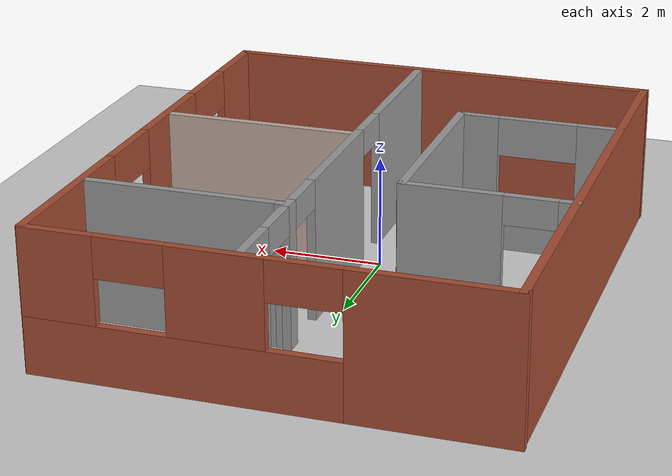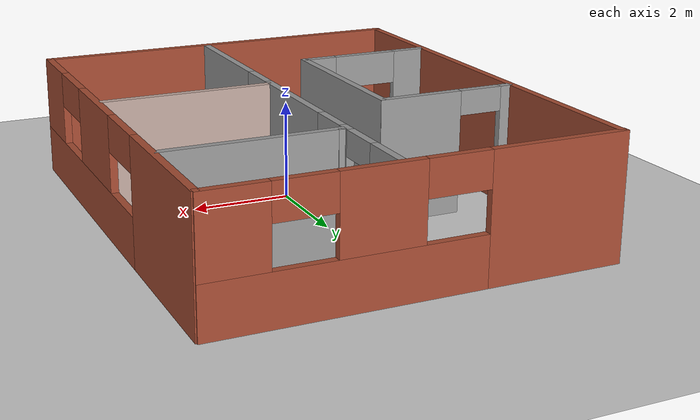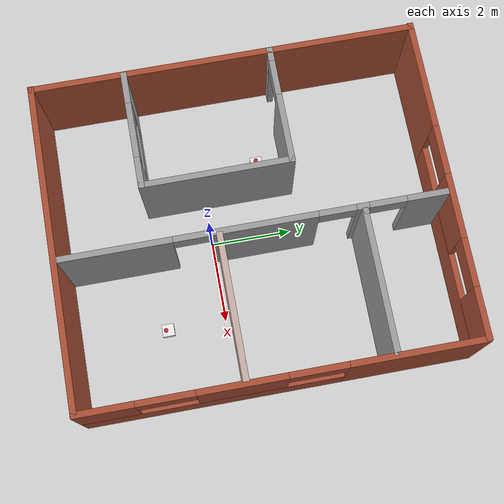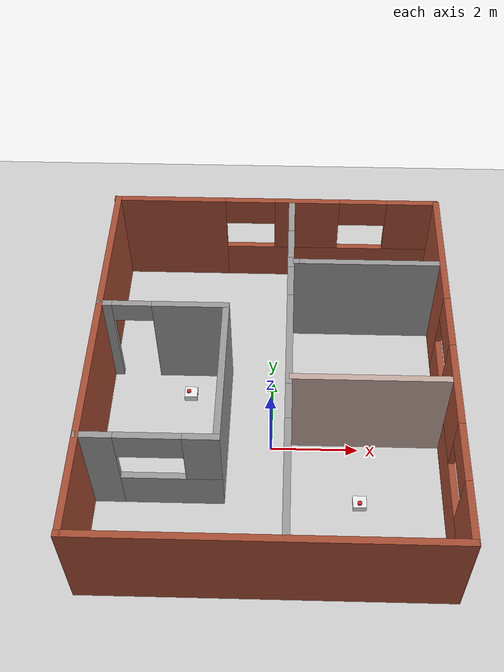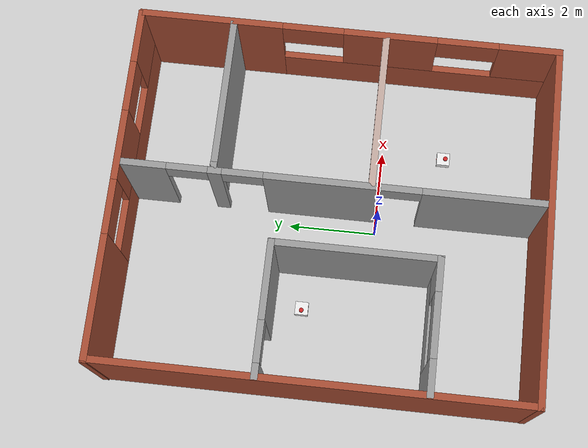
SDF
<sdf version="1.6">
 <world name="my_world">
  <include><uri>model://ground_plane</uri></include>
  <include><uri>model://sun</uri></include>
  <include><uri>model://my_building</uri></include>
  <include><uri>model://my_bot</uri><name>my_bot_1</name><pose>-2 1.5 0 0 0 0</pose></include>
  <include><uri>model://my_bot</uri><name>my_bot_2</name><pose>2 -1.5 0 0 0 1.5707</pose></include>
  <plugin name="welcome" filename="libwelcome.so"/>
 </world>
</sdf>

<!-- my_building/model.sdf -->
<sdf version='1.7'>
  <model name='my_world_example'>
    <pose>-0.006622 1.02346 0 0 -0 0</pose>
    <link name='Wall_14'>
      <collision name='Wall_14_Collision'>
        <geometry>
          <box>
            <size>0.15 0.15 2.5</size>
          </box>
        </geometry>
        <pose>0 0 1.25 0 -0 0</pose>
      </collision>
      <visual name='Wall_14_Visual'>
        <pose>0 0 1.25 0 -0 0</pose>
        <geometry>
          <box>
            <size>0.15 0.15 2.5</size>
          </box>
        </geometry>
        <material>
          <script>
            <uri>file://media/materials/scripts/gazebo.material</uri>
            <name>Gazebo/Grey</name>
          </script>
          <ambient>1 1 1 1</ambient>
        </material>
        <meta>
          <layer>0</layer>
        </meta>
      </visual>
      <pose>0.509968 2.60791 0 0 -0 0</pose>
    </link>
    <link name='Wall_3'>
      <pose>3.93862 -0.015464 0 0 -0 -1.5708</pose>
      <visual name='Wall_3_Visual_0'>
        <pose>-3.13619 0 1.25 0 -0 0</pose>
        <geometry>
          <box>
            <size>3.22762 0.15 2.5</size>
          </box>
        </geometry>
        <material>
          <script>
            <uri>file://media/materials/scripts/gazebo.material</uri>
            <name>Gazebo/Bricks</name>
          </script>
          <ambient>1 1 1 1</ambient>
        </material>
        <meta>
          <layer>0</layer>
        </meta>
      </visual>
      <collision name='Wall_3_Collision_0'>
        <geometry>
          <box>
            <size>3.22762 0.15 2.5</size>
          </box>
        </geometry>
        <pose>-3.13619 0 1.25 0 -0 0</pose>
      </collision>
      <visual name='Wall_3_Visual_1'>
        <pose>1.61381 0 0.5 0 -0 0</pose>
        <geometry>
          <box>
            <size>6.27238 0.15 1</size>
          </box>
        </geometry>
        <material>
          <script>
            <uri>file://media/materials/scripts/gazebo.material</uri>
            <name>Gazebo/Bricks</name>
          </script>
          <ambient>1 1 1 1</ambient>
        </material>
        <meta>
          <layer>0</layer>
        </meta>
      </visual>
      <collision name='Wall_3_Collision_1'>
        <geometry>
          <box>
            <size>6.27238 0.15 1</size>
          </box>
        </geometry>
        <pose>1.61381 0 0.5 0 -0 0</pose>
      </collision>
      <visual name='Wall_3_Visual_2'>
        <pose>0.90617 0 1.75 0 -0 0</pose>
        <geometry>
          <box>
            <size>2.10109 0.15 1.5</size>
          </box>
        </geometry>
        <material>
          <script>
            <uri>file://media/materials/scripts/gazebo.material</uri>
            <name>Gazebo/Bricks</name>
          </script>
          <ambient>1 1 1 1</ambient>
        </material>
        <meta>
          <layer>0</layer>
        </meta>
      </visual>
      <collision name='Wall_3_Collision_2'>
        <geometry>
          <box>
            <size>2.10109 0.15 1.5</size>
          </box>
        </geometry>
        <pose>0.90617 0 1.75 0 -0 0</pose>
      </collision>
      <visual name='Wall_3_Visual_3'>
        <pose>4.03836 0 1.75 0 -0 0</pose>
        <geometry>
          <box>
            <size>1.42328 0.15 1.5</size>
          </box>
        </geometry>
        <material>
          <script>
            <uri>file://media/materials/scripts/gazebo.material</uri>
            <name>Gazebo/Bricks</name>
          </script>
          <ambient>1 1 1 1</ambient>
        </material>
        <meta>
          <layer>0</layer>
        </meta>
      </visual>
      <collision name='Wall_3_Collision_3'>
        <geometry>
          <box>
            <size>1.42328 0.15 1.5</size>
          </box>
        </geometry>
        <pose>4.03836 0 1.75 0 -0 0</pose>
      </collision>
      <visual name='Wall_3_Visual_4'>
        <pose>-0.833377 0 2.15 0 -0 0</pose>
        <geometry>
          <box>
            <size>1.378 0.15 0.7</size>
          </box>
        </geometry>
        <material>
          <script>
            <uri>file://media/materials/scripts/gazebo.material</uri>
            <name>Gazebo/Bricks</name>
          </script>
          <ambient>1 1 1 1</ambient>
        </material>
        <meta>
          <layer>0</layer>
        </meta>
      </visual>
      <collision name='Wall_3_Collision_4'>
        <geometry>
          <box>
            <size>1.378 0.15 0.7</size>
          </box>
        </geometry>
        <pose>-0.833377 0 2.15 0 -0 0</pose>
      </collision>
      <visual name='Wall_3_Visual_5'>
        <pose>2.64172 0 2.15 0 -0 0</pose>
        <geometry>
          <box>
            <size>1.37 0.15 0.7</size>
          </box>
        </geometry>
        <material>
          <script>
            <uri>file://media/materials/scripts/gazebo.material</uri>
            <name>Gazebo/Bricks</name>
          </script>
          <ambient>1 1 1 1</ambient>
        </material>
        <meta>
          <layer>0</layer>
        </meta>
      </visual>
      <collision name='Wall_3_Collision_5'>
        <geometry>
          <box>
            <size>1.37 0.15 0.7</size>
          </box>
        </geometry>
        <pose>2.64172 0 2.15 0 -0 0</pose>
      </collision>
    </link>
    <link name='Wall_33'>
      <collision name='Wall_33_Collision'>
        <geometry>
          <box>
            <size>9.5 0.15 2.5</size>
          </box>
        </geometry>
        <pose>0 0 1.25 0 -0 0</pose>
      </collision>
      <visual name='Wall_33_Visual'>
        <pose>0 0 1.25 0 -0 0</pose>
        <geometry>
          <box>
            <size>9.5 0.15 2.5</size>
          </box>
        </geometry>
        <material>
          <script>
            <uri>file://media/materials/scripts/gazebo.material</uri>
            <name>Gazebo/Bricks</name>
          </script>
          <ambient>1 1 1 1</ambient>
        </material>
        <meta>
          <layer>0</layer>
        </meta>
      </visual>
      <pose>-3.92017 0.013616 0 0 -0 -1.5708</pose>
    </link>
    <link name='Wall_35'>
      <pose>-2.48639 1.16661 0 0 -0 0</pose>
      <visual name='Wall_35_Visual_0'>
        <pose>-1.32433 0 1.25 0 -0 0</pose>
        <geometry>
          <box>
            <size>0.35134 0.15 2.5</size>
          </box>
        </geometry>
        <material>
          <script>
            <uri>file://media/materials/scripts/gazebo.material</uri>
            <name>Gazebo/Grey</name>
          </script>
          <ambient>1 1 1 1</ambient>
        </material>
        <meta>
          <layer>0</layer>
        </meta>
      </visual>
      <collision name='Wall_35_Collision_0'>
        <geometry>
          <box>
            <size>0.35134 0.15 2.5</size>
          </box>
        </geometry>
        <pose>-1.32433 0 1.25 0 -0 0</pose>
      </collision>
      <visual name='Wall_35_Visual_1'>
        <pose>0.62567 0 1.25 0 -0 0</pose>
        <geometry>
          <box>
            <size>1.74866 0.15 2.5</size>
          </box>
        </geometry>
        <material>
          <script>
            <uri>file://media/materials/scripts/gazebo.material</uri>
            <name>Gazebo/Grey</name>
          </script>
          <ambient>1 1 1 1</ambient>
        </material>
        <meta>
          <layer>0</layer>
        </meta>
      </visual>
      <collision name='Wall_35_Collision_1'>
        <geometry>
          <box>
            <size>1.74866 0.15 2.5</size>
          </box>
        </geometry>
        <pose>0.62567 0 1.25 0 -0 0</pose>
      </collision>
      <visual name='Wall_35_Visual_2'>
        <pose>-0.69866 0 2.25 0 -0 0</pose>
        <geometry>
          <box>
            <size>0.9 0.15 0.5</size>
          </box>
        </geometry>
        <material>
          <script>
            <uri>file://media/materials/scripts/gazebo.material</uri>
            <name>Gazebo/Grey</name>
          </script>
          <ambient>1 1 1 1</ambient>
        </material>
        <meta>
          <layer>0</layer>
        </meta>
      </visual>
      <collision name='Wall_35_Collision_2'>
        <geometry>
          <box>
            <size>0.9 0.15 0.5</size>
          </box>
        </geometry>
        <pose>-0.69866 0 2.25 0 -0 0</pose>
      </collision>
    </link>
    <link name='Wall_38'>
      <pose>-0.013622 4.69452 0 0 -0 0</pose>
      <visual name='Wall_38_Visual_0'>
        <pose>-2.6211 0 1.25 0 -0 0</pose>
        <geometry>
          <box>
            <size>2.75779 0.15 2.5</size>
          </box>
        </geometry>
        <material>
          <script>
            <uri>file://media/materials/scripts/gazebo.material</uri>
            <name>Gazebo/Bricks</name>
          </script>
          <ambient>1 1 1 1</ambient>
        </material>
        <meta>
          <layer>0</layer>
        </meta>
      </visual>
      <collision name='Wall_38_Collision_0'>
        <geometry>
          <box>
            <size>2.75779 0.15 2.5</size>
          </box>
        </geometry>
        <pose>-2.6211 0 1.25 0 -0 0</pose>
      </collision>
      <visual name='Wall_38_Visual_1'>
        <pose>1.3789 0 0.5 0 -0 0</pose>
        <geometry>
          <box>
            <size>5.24221 0.15 1</size>
          </box>
        </geometry>
        <material>
          <script>
            <uri>file://media/materials/scripts/gazebo.material</uri>
            <name>Gazebo/Bricks</name>
          </script>
          <ambient>1 1 1 1</ambient>
        </material>
        <meta>
          <layer>0</layer>
        </meta>
      </visual>
      <collision name='Wall_38_Collision_1'>
        <geometry>
          <box>
            <size>5.24221 0.15 1</size>
          </box>
        </geometry>
        <pose>1.3789 0 0.5 0 -0 0</pose>
      </collision>
      <visual name='Wall_38_Visual_2'>
        <pose>0.777661 0 1.75 0 -0 0</pose>
        <geometry>
          <box>
            <size>1.59774 0.15 1.5</size>
          </box>
        </geometry>
        <material>
          <script>
            <uri>file://media/materials/scripts/gazebo.material</uri>
            <name>Gazebo/Bricks</name>
          </script>
          <ambient>1 1 1 1</ambient>
        </material>
        <meta>
          <layer>0</layer>
        </meta>
      </visual>
      <collision name='Wall_38_Collision_2'>
        <geometry>
          <box>
            <size>1.59774 0.15 1.5</size>
          </box>
        </geometry>
        <pose>0.777661 0 1.75 0 -0 0</pose>
      </collision>
      <visual name='Wall_38_Visual_3'>
        <pose>3.36977 0 1.75 0 -0 0</pose>
        <geometry>
          <box>
            <size>1.26047 0.15 1.5</size>
          </box>
        </geometry>
        <material>
          <script>
            <uri>file://media/materials/scripts/gazebo.material</uri>
            <name>Gazebo/Bricks</name>
          </script>
          <ambient>1 1 1 1</ambient>
        </material>
        <meta>
          <layer>0</layer>
        </meta>
      </visual>
      <collision name='Wall_38_Collision_3'>
        <geometry>
          <box>
            <size>1.26047 0.15 1.5</size>
          </box>
        </geometry>
        <pose>3.36977 0 1.75 0 -0 0</pose>
      </collision>
      <visual name='Wall_38_Visual_4'>
        <pose>-0.631709 0 2.15 0 -0 0</pose>
        <geometry>
          <box>
            <size>1.221 0.15 0.7</size>
          </box>
        </geometry>
        <material>
          <script>
            <uri>file://media/materials/scripts/gazebo.material</uri>
            <name>Gazebo/Bricks</name>
          </script>
          <ambient>1 1 1 1</ambient>
        </material>
        <meta>
          <layer>0</layer>
        </meta>
      </visual>
      <collision name='Wall_38_Collision_4'>
        <geometry>
          <box>
            <size>1.221 0.15 0.7</size>
          </box>
        </geometry>
        <pose>-0.631709 0 2.15 0 -0 0</pose>
      </collision>
      <visual name='Wall_38_Visual_5'>
        <pose>2.15803 0 2.15 0 -0 0</pose>
        <geometry>
          <box>
            <size>1.163 0.15 0.7</size>
          </box>
        </geometry>
        <material>
          <script>
            <uri>file://media/materials/scripts/gazebo.material</uri>
            <name>Gazebo/Bricks</name>
          </script>
          <ambient>1 1 1 1</ambient>
        </material>
        <meta>
          <layer>0</layer>
        </meta>
      </visual>
      <collision name='Wall_38_Collision_5'>
        <geometry>
          <box>
            <size>1.163 0.15 0.7</size>
          </box>
        </geometry>
        <pose>2.15803 0 2.15 0 -0 0</pose>
      </collision>
    </link>
    <link name='Wall_42'>
      <pose>0.387902 0.000987 0 0 -0 -1.5708</pose>
      <visual name='Wall_42_Visual_0'>
        <pose>-4.12408 0 1.25 0 -0 0</pose>
        <geometry>
          <box>
            <size>1.00184 0.15 2.5</size>
          </box>
        </geometry>
        <material>
          <script>
            <uri>file://media/materials/scripts/gazebo.material</uri>
            <name>Gazebo/Grey</name>
          </script>
          <ambient>1 1 1 1</ambient>
        </material>
        <meta>
          <layer>0</layer>
        </meta>
      </visual>
      <collision name='Wall_42_Collision_0'>
        <geometry>
          <box>
            <size>1.00184 0.15 2.5</size>
          </box>
        </geometry>
        <pose>-4.12408 0 1.25 0 -0 0</pose>
      </collision>
      <visual name='Wall_42_Visual_1'>
        <pose>-2.5695 0 1.25 0 -0 0</pose>
        <geometry>
          <box>
            <size>0.307325 0.15 2.5</size>
          </box>
        </geometry>
        <material>
          <script>
            <uri>file://media/materials/scripts/gazebo.material</uri>
            <name>Gazebo/Grey</name>
          </script>
          <ambient>1 1 1 1</ambient>
        </material>
        <meta>
          <layer>0</layer>
        </meta>
      </visual>
      <collision name='Wall_42_Collision_1'>
        <geometry>
          <box>
            <size>0.307325 0.15 2.5</size>
          </box>
        </geometry>
        <pose>-2.5695 0 1.25 0 -0 0</pose>
      </collision>
      <visual name='Wall_42_Visual_2'>
        <pose>-0.245259 0 1.25 0 -0 0</pose>
        <geometry>
          <box>
            <size>2.54116 0.15 2.5</size>
          </box>
        </geometry>
        <material>
          <script>
            <uri>file://media/materials/scripts/gazebo.material</uri>
            <name>Gazebo/Grey</name>
          </script>
          <ambient>1 1 1 1</ambient>
        </material>
        <meta>
          <layer>0</layer>
        </meta>
      </visual>
      <collision name='Wall_42_Collision_2'>
        <geometry>
          <box>
            <size>2.54116 0.15 2.5</size>
          </box>
        </geometry>
        <pose>-0.245259 0 1.25 0 -0 0</pose>
      </collision>
      <visual name='Wall_42_Visual_3'>
        <pose>3.27516 0 1.25 0 -0 0</pose>
        <geometry>
          <box>
            <size>2.69968 0.15 2.5</size>
          </box>
        </geometry>
        <material>
          <script>
            <uri>file://media/materials/scripts/gazebo.material</uri>
            <name>Gazebo/Grey</name>
          </script>
          <ambient>1 1 1 1</ambient>
        </material>
        <meta>
          <layer>0</layer>
        </meta>
      </visual>
      <collision name='Wall_42_Collision_3'>
        <geometry>
          <box>
            <size>2.69968 0.15 2.5</size>
          </box>
        </geometry>
        <pose>3.27516 0 1.25 0 -0 0</pose>
      </collision>
      <visual name='Wall_42_Visual_4'>
        <pose>-3.17316 0 2.25 0 -0 0</pose>
        <geometry>
          <box>
            <size>0.9 0.15 0.5</size>
          </box>
        </geometry>
        <material>
          <script>
            <uri>file://media/materials/scripts/gazebo.material</uri>
            <name>Gazebo/Grey</name>
          </script>
          <ambient>1 1 1 1</ambient>
        </material>
        <meta>
          <layer>0</layer>
        </meta>
      </visual>
      <collision name='Wall_42_Collision_4'>
        <geometry>
          <box>
            <size>0.9 0.15 0.5</size>
          </box>
        </geometry>
        <pose>-3.17316 0 2.25 0 -0 0</pose>
      </collision>
      <visual name='Wall_42_Visual_5'>
        <pose>-1.96584 0 2.25 0 -0 0</pose>
        <geometry>
          <box>
            <size>0.9 0.15 0.5</size>
          </box>
        </geometry>
        <material>
          <script>
            <uri>file://media/materials/scripts/gazebo.material</uri>
            <name>Gazebo/Grey</name>
          </script>
          <ambient>1 1 1 1</ambient>
        </material>
        <meta>
          <layer>0</layer>
        </meta>
      </visual>
      <collision name='Wall_42_Collision_5'>
        <geometry>
          <box>
            <size>0.9 0.15 0.5</size>
          </box>
        </geometry>
        <pose>-1.96584 0 2.25 0 -0 0</pose>
      </collision>
      <visual name='Wall_42_Visual_6'>
        <pose>1.47532 0 2.25 0 -0 0</pose>
        <geometry>
          <box>
            <size>0.9 0.15 0.5</size>
          </box>
        </geometry>
        <material>
          <script>
            <uri>file://media/materials/scripts/gazebo.material</uri>
            <name>Gazebo/Grey</name>
          </script>
          <ambient>1 1 1 1</ambient>
        </material>
        <meta>
          <layer>0</layer>
        </meta>
      </visual>
      <collision name='Wall_42_Collision_6'>
        <geometry>
          <box>
            <size>0.9 0.15 0.5</size>
          </box>
        </geometry>
        <pose>1.47532 0 2.25 0 -0 0</pose>
      </collision>
    </link>
    <link name='Wall_45'>
      <collision name='Wall_45_Collision'>
        <geometry>
          <box>
            <size>3.75 0.15 2.5</size>
          </box>
        </geometry>
        <pose>0 0 1.25 0 -0 0</pose>
      </collision>
      <visual name='Wall_45_Visual'>
        <pose>0 0 1.25 0 -0 0</pose>
        <geometry>
          <box>
            <size>3.75 0.15 2.5</size>
          </box>
        </geometry>
        <material>
          <script>
            <uri>file://media/materials/scripts/gazebo.material</uri>
            <name>Gazebo/Grey</name>
          </script>
          <ambient>1 1 1 1</ambient>
        </material>
        <meta>
          <layer>0</layer>
        </meta>
      </visual>
      <pose>-1.05416 -0.637427 0 0 -0 1.5708</pose>
    </link>
    <link name='Wall_52'>
      <pose>-2.47916 -2.43743 0 0 -0 0</pose>
      <visual name='Wall_52_Visual_0'>
        <pose>-1.09324 0 1.25 0 -0 0</pose>
        <geometry>
          <box>
            <size>0.813526 0.15 2.5</size>
          </box>
        </geometry>
        <material>
          <script>
            <uri>file://media/materials/scripts/gazebo.material</uri>
            <name>Gazebo/Grey</name>
          </script>
          <ambient>1 1 1 1</ambient>
        </material>
        <meta>
          <layer>0</layer>
        </meta>
      </visual>
      <collision name='Wall_52_Collision_0'>
        <geometry>
          <box>
            <size>0.813526 0.15 2.5</size>
          </box>
        </geometry>
        <pose>-1.09324 0 1.25 0 -0 0</pose>
      </collision>
      <visual name='Wall_52_Visual_1'>
        <pose>0.406763 0 0.5 0 -0 0</pose>
        <geometry>
          <box>
            <size>2.18647 0.15 1</size>
          </box>
        </geometry>
        <material>
          <script>
            <uri>file://media/materials/scripts/gazebo.material</uri>
            <name>Gazebo/Grey</name>
          </script>
          <ambient>1 1 1 1</ambient>
        </material>
        <meta>
          <layer>0</layer>
        </meta>
      </visual>
      <collision name='Wall_52_Collision_1'>
        <geometry>
          <box>
            <size>2.18647 0.15 1</size>
          </box>
        </geometry>
        <pose>0.406763 0 0.5 0 -0 0</pose>
      </collision>
      <visual name='Wall_52_Visual_2'>
        <pose>1.11076 0 1.75 0 -0 0</pose>
        <geometry>
          <box>
            <size>0.778474 0.15 1.5</size>
          </box>
        </geometry>
        <material>
          <script>
            <uri>file://media/materials/scripts/gazebo.material</uri>
            <name>Gazebo/Grey</name>
          </script>
          <ambient>1 1 1 1</ambient>
        </material>
        <meta>
          <layer>0</layer>
        </meta>
      </visual>
      <collision name='Wall_52_Collision_2'>
        <geometry>
          <box>
            <size>0.778474 0.15 1.5</size>
          </box>
        </geometry>
        <pose>1.11076 0 1.75 0 -0 0</pose>
      </collision>
      <visual name='Wall_52_Visual_3'>
        <pose>0.017526 0 2.15 0 -0 0</pose>
        <geometry>
          <box>
            <size>1.408 0.15 0.7</size>
          </box>
        </geometry>
        <material>
          <script>
            <uri>file://media/materials/scripts/gazebo.material</uri>
            <name>Gazebo/Grey</name>
          </script>
          <ambient>1 1 1 1</ambient>
        </material>
        <meta>
          <layer>0</layer>
        </meta>
      </visual>
      <collision name='Wall_52_Collision_3'>
        <geometry>
          <box>
            <size>1.408 0.15 0.7</size>
          </box>
        </geometry>
        <pose>0.017526 0 2.15 0 -0 0</pose>
      </collision>
    </link>
    <link name='Wall_59'>
      <collision name='Wall_59_Collision'>
        <geometry>
          <box>
            <size>8 0.15 2.5</size>
          </box>
        </geometry>
        <pose>0 0 1.25 0 -0 0</pose>
      </collision>
      <visual name='Wall_59_Visual'>
        <pose>0 0 1.25 0 -0 0</pose>
        <geometry>
          <box>
            <size>8 0.15 2.5</size>
          </box>
        </geometry>
        <material>
          <script>
            <uri>file://media/materials/scripts/gazebo.material</uri>
            <name>Gazebo/Bricks</name>
          </script>
          <ambient>1 1 1 1</ambient>
        </material>
        <meta>
          <layer>0</layer>
        </meta>
      </visual>
      <pose>-0.003508 -4.69452 0 0 -0 3.14159</pose>
    </link>
    <link name='Wall_61'>
      <collision name='Wall_61_Collision'>
        <geometry>
          <box>
            <size>3.5 0.15 2.5</size>
          </box>
        </geometry>
        <pose>0 0 1.25 0 -0 0</pose>
      </collision>
      <visual name='Wall_61_Visual'>
        <pose>0 0 1.25 0 -0 0</pose>
        <geometry>
          <box>
            <size>3.5 0.15 2.5</size>
          </box>
        </geometry>
        <material>
          <script>
            <uri>file://media/materials/scripts/gazebo.material</uri>
            <name>Gazebo/Grey</name>
          </script>
          <ambient>0.760784 0.662745 0.627451 1</ambient>
        </material>
        <meta>
          <layer>0</layer>
        </meta>
      </visual>
      <pose>2.14562 -0.833464 0 0 -0 0</pose>
    </link>
    <link name='Wall_8'>
      <collision name='Wall_8_Collision'>
        <geometry>
          <box>
            <size>3.5 0.15 2.5</size>
          </box>
        </geometry>
        <pose>0 0 1.25 0 -0 0</pose>
      </collision>
      <visual name='Wall_8_Visual'>
        <pose>0 0 1.25 0 -0 0</pose>
        <geometry>
          <box>
            <size>3.5 0.15 2.5</size>
          </box>
        </geometry>
        <material>
          <script>
            <uri>file://media/materials/scripts/gazebo.material</uri>
            <name>Gazebo/Grey</name>
          </script>
          <ambient>1 1 1 1</ambient>
        </material>
        <meta>
          <layer>0</layer>
        </meta>
      </visual>
      <pose>2.18497 2.60122 0 0 -0 0</pose>
    </link>
    <static>1</static>
  </model>
</sdf>

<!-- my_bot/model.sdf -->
<sdf version='1.7'>
  <model name='my_bot'>
    <link name='base_link'>
      <inertial>
        <pose>0.041667 0 0.091667 0 -0 0</pose>
        <mass>0.6</mass>
        <inertia>
          <ixx>0.00559667</ixx>
          <ixy>0</ixy>
          <ixz>0.000416667</ixz>
          <iyy>0.005805</iyy>
          <iyz>0</iyz>
          <izz>0.00783333</izz>
        </inertia>
      </inertial>
      <sensor name='camera' type='camera'>
        <visualize>1</visualize>
        <update_rate>10</update_rate>
        <camera>
          <horizontal_fov>1.089</horizontal_fov>
          <image>
            <format>R8G8B8</format>
            <width>1920</width>
            <height>1080</height>
          </image>
          <clip>
            <near>0.05</near>
            <far>30</far>
          </clip>
        </camera>
        <plugin name='camera_controller' filename='libgazebo_ros_camera.so'>
          <frame_name>camera_link_optical</frame_name>
        </plugin>
        <pose>0.205 0 0.08 0 -0 0</pose>
      </sensor>
      <sensor name='laser' type='ray'>
        <visualize>0</visualize>
        <update_rate>10</update_rate>
        <ray>
          <scan>
            <horizontal>
              <samples>360</samples>
              <min_angle>-3.14</min_angle>
              <max_angle>3.14</max_angle>
              <resolution>1</resolution>
            </horizontal>
            <vertical>
              <samples>1</samples>
              <min_angle>0</min_angle>
              <max_angle>0</max_angle>
            </vertical>
          </scan>
          <range>
            <min>0.3</min>
            <max>12</max>
          </range>
        </ray>
        <plugin name='laser_controller' filename='libgazebo_ros_ray_sensor.so'>
          <ros>
            <argument>~/out:=scan</argument>
          </ros>
          <output_type>sensor_msgs/LaserScan</output_type>
          <frame_name>laser_frame</frame_name>
        </plugin>
        <pose>0 0 0.175 0 -0 0</pose>
      </sensor>
      <self_collide>0</self_collide>
      <enable_wind>0</enable_wind>
      <kinematic>0</kinematic>
      <pose>0 0 0 0 -0 0</pose>
      <visual name='base_link_fixed_joint_lump__chassis_visual'>
        <pose>0.05 0 0.075 0 -0 0</pose>
        <geometry>
          <box>
            <size>0.3 0.3 0.15</size>
          </box>
        </geometry>
        <material>
          <script>
            <name>Gazebo/White</name>
            <uri>file://media/materials/scripts/gazebo.material</uri>
          </script>
          <shader type='pixel'/>
        </material>
        <transparency>0</transparency>
        <cast_shadows>1</cast_shadows>
      </visual>
      <visual name='base_link_fixed_joint_lump__camera_link_visual_1'>
        <pose>0.205 0 0.08 0 -0 0</pose>
        <geometry>
          <box>
            <size>0.01 0.03 0.03</size>
          </box>
        </geometry>
        <material>
          <script>
            <name>Gazebo/Red</name>
            <uri>file://media/materials/scripts/gazebo.material</uri>
          </script>
          <shader type='pixel'/>
        </material>
        <transparency>0</transparency>
        <cast_shadows>1</cast_shadows>
      </visual>
      <visual name='base_link_fixed_joint_lump__laser_frame_visual_2'>
        <pose>0 0 0.175 0 -0 0</pose>
        <geometry>
          <cylinder>
            <length>0.04</length>
            <radius>0.05</radius>
          </cylinder>
        </geometry>
        <material>
          <script>
            <name>Gazebo/Red</name>
            <uri>file://media/materials/scripts/gazebo.material</uri>
          </script>
          <shader type='pixel'/>
        </material>
        <transparency>0</transparency>
        <cast_shadows>1</cast_shadows>
      </visual>
      <collision name='base_link_fixed_joint_lump__chassis_collision'>
        <laser_retro>0</laser_retro>
        <max_contacts>10</max_contacts>
        <pose>0.05 0 0.075 0 -0 0</pose>
        <geometry>
          <box>
            <size>0.3 0.3 0.15</size>
          </box>
        </geometry>
        <surface>
          <friction>
            <ode>
              <mu>1</mu>
              <mu2>1</mu2>
              <fdir1>0 0 0</fdir1>
              <slip1>0</slip1>
              <slip2>0</slip2>
            </ode>
            <torsional>
              <coefficient>1</coefficient>
              <patch_radius>0</patch_radius>
              <surface_radius>0</surface_radius>
              <use_patch_radius>1</use_patch_radius>
              <ode>
                <slip>0</slip>
              </ode>
            </torsional>
          </friction>
          <bounce>
            <restitution_coefficient>0</restitution_coefficient>
            <threshold>1e+06</threshold>
          </bounce>
          <contact>
            <collide_without_contact>0</collide_without_contact>
            <collide_without_contact_bitmask>1</collide_without_contact_bitmask>
            <collide_bitmask>1</collide_bitmask>
            <ode>
              <soft_cfm>0</soft_cfm>
              <soft_erp>0.2</soft_erp>
              <kp>1e+13</kp>
              <kd>1</kd>
              <max_vel>0.01</max_vel>
              <min_depth>0</min_depth>
            </ode>
            <bullet>
              <split_impulse>1</split_impulse>
              <split_impulse_penetration_threshold>-0.01</split_impulse_penetration_threshold>
              <soft_cfm>0</soft_cfm>
              <soft_erp>0.2</soft_erp>
              <kp>1e+13</kp>
              <kd>1</kd>
            </bullet>
          </contact>
        </surface>
      </collision>
      <collision name='base_link_fixed_joint_lump__laser_frame_collision_1'>
        <laser_retro>0</laser_retro>
        <max_contacts>10</max_contacts>
        <pose>0 0 0.175 0 -0 0</pose>
        <geometry>
          <cylinder>
            <radius>0.05</radius>
            <length>0.04</length>
          </cylinder>
        </geometry>
        <surface>
          <friction>
            <ode>
              <mu>1</mu>
              <mu2>1</mu2>
              <fdir1>0 0 0</fdir1>
              <slip1>0</slip1>
              <slip2>0</slip2>
            </ode>
            <torsional>
              <coefficient>1</coefficient>
              <patch_radius>0</patch_radius>
              <surface_radius>0</surface_radius>
              <use_patch_radius>1</use_patch_radius>
              <ode>
                <slip>0</slip>
              </ode>
            </torsional>
          </friction>
          <bounce>
            <restitution_coefficient>0</restitution_coefficient>
            <threshold>1e+06</threshold>
          </bounce>
          <contact>
            <collide_without_contact>0</collide_without_contact>
            <collide_without_contact_bitmask>1</collide_without_contact_bitmask>
            <collide_bitmask>1</collide_bitmask>
            <ode>
              <soft_cfm>0</soft_cfm>
              <soft_erp>0.2</soft_erp>
              <kp>1e+13</kp>
              <kd>1</kd>
              <max_vel>0.01</max_vel>
              <min_depth>0</min_depth>
            </ode>
            <bullet>
              <split_impulse>1</split_impulse>
              <split_impulse_penetration_threshold>-0.01</split_impulse_penetration_threshold>
              <soft_cfm>0</soft_cfm>
              <soft_erp>0.2</soft_erp>
              <kp>1e+13</kp>
              <kd>1</kd>
            </bullet>
          </contact>
        </surface>
      </collision>
    </link>
    <static>0</static>
    <allow_auto_disable>1</allow_auto_disable>
    <plugin name='diff_drive' filename='libgazebo_ros_diff_drive.so'>
      <left_joint>left_wheel_joint</left_joint>
      <right_joint>right_wheel_joint</right_joint>
      <wheel_separation>0.35</wheel_separation>
      <wheel_diameter>0.1</wheel_diameter>
      <max_wheel_torque>200</max_wheel_torque>
      <max_wheel_acceleration>50.0</max_wheel_acceleration>
      <odometry_frame>odom</odometry_frame>
      <robot_base_frame>base_link</robot_base_frame>
      <publish_odom>1</publish_odom>
      <publish_odom_tf>1</publish_odom_tf>
      <publish_wheel_tf>1</publish_wheel_tf>
    </plugin>
  </model>
</sdf>
